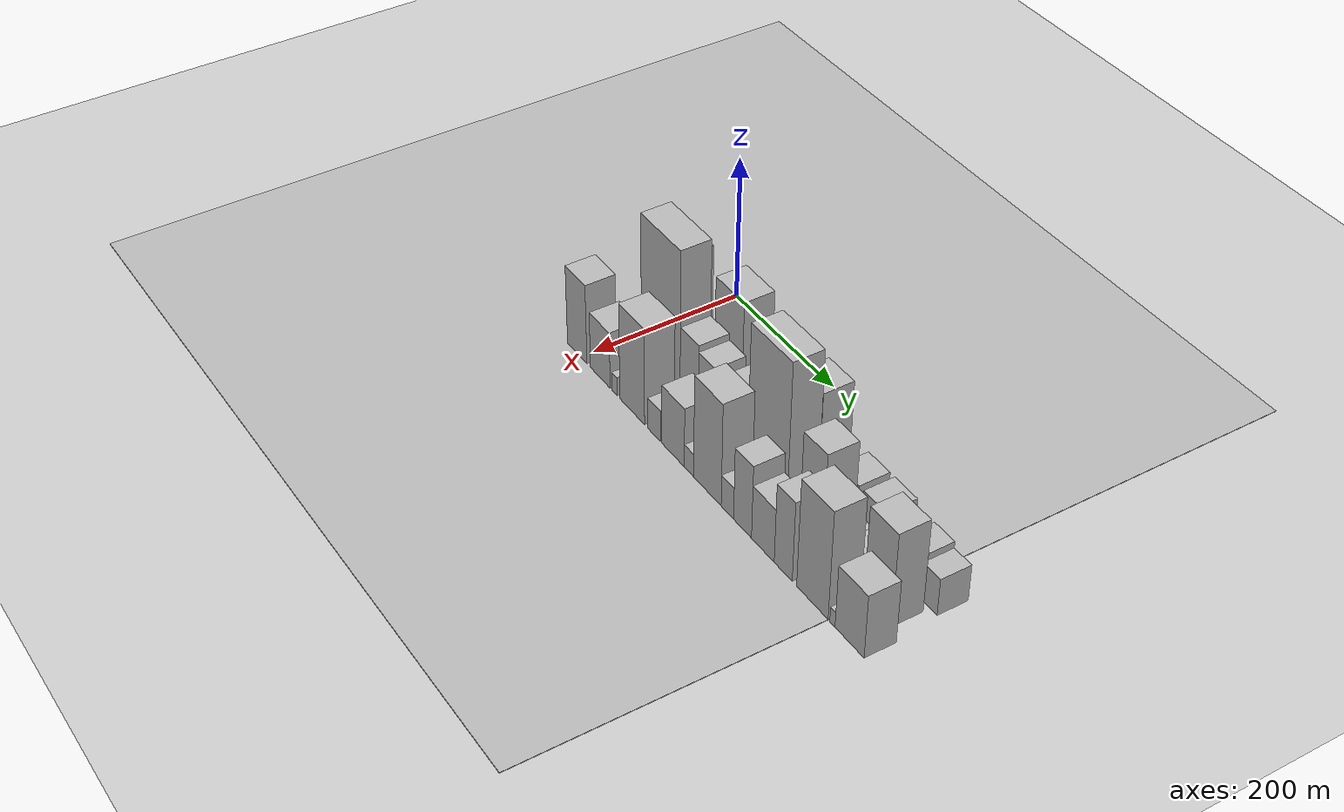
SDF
<sdf version="1.6">
 <world name="default">
  <include><name>ground_plane_1</name><uri>model://HANNAS_ground_plane</uri></include>
  <include>
   <name>ground_plane_2</name>
   <uri>model://HANNAS_ground_plane</uri>
   <pose>100 0 0  0 0 0</pose>
  </include>
  <model name="building_17">
   <static>1</static>
   <pose>100.0000 41.2047 0 0.000000 0.000000 0.000000</pose>
   <link name="link">
    <pose>0 0 75.00 0 0 0</pose>
    <collision name="collision"><geometry><box><size>40.0000 54.4174 150.0000</size></box></geometry></collision>
    <visual name="visual">
     <cast_shadows>0</cast_shadows>
     <geometry><box><size>40.0000 54.4174 150.0000</size></box></geometry>
     <material>
      <script>
       <uri>model://HANNAS_wall/materials/scripts</uri>
       <uri>model://HANNAS_wall/materials/textures</uri>
       <name>vrc/HANNAS_wall</name>
      </script>
     </material>
    </visual>
   </link>
  </model>
  <model name="building_18">
   <static>1</static>
   <pose>100.0000 85.2992 0 0.000000 0.000000 0.000000</pose>
   <link name="link">
    <pose>0 0 16.50 0 0 0</pose>
    <collision name="collision"><geometry><box><size>40.0000 19.7715 33.0000</size></box></geometry></collision>
    <visual name="visual">
     <cast_shadows>0</cast_shadows>
     <geometry><box><size>40.0000 19.7715 33.0000</size></box></geometry>
     <material>
      <script>
       <uri>model://HANNAS_wall/materials/scripts</uri>
       <uri>model://HANNAS_wall/materials/textures</uri>
       <name>vrc/HANNAS_wall</name>
      </script>
     </material>
    </visual>
   </link>
  </model>
  <model name="building_19">
   <static>1</static>
   <pose>100.0000 117.4299 0 0.000000 0.000000 0.000000</pose>
   <link name="link">
    <pose>0 0 22.50 0 0 0</pose>
    <collision name="collision"><geometry><box><size>40.0000 26.4899 45.0000</size></box></geometry></collision>
    <visual name="visual">
     <cast_shadows>0</cast_shadows>
     <geometry><box><size>40.0000 26.4899 45.0000</size></box></geometry>
     <material>
      <script>
       <uri>model://HANNAS_wall/materials/scripts</uri>
       <uri>model://HANNAS_wall/materials/textures</uri>
       <name>vrc/HANNAS_wall</name>
      </script>
     </material>
    </visual>
   </link>
  </model>
  <model name="building_20">
   <static>1</static>
   <pose>100.0000 162.7504 0 0.000000 0.000000 0.000000</pose>
   <link name="link">
    <pose>0 0 82.50 0 0 0</pose>
    <collision name="collision"><geometry><box><size>40.0000 56.1511 165.0000</size></box></geometry></collision>
    <visual name="visual">
     <cast_shadows>0</cast_shadows>
     <geometry><box><size>40.0000 56.1511 165.0000</size></box></geometry>
     <material>
      <script>
       <uri>model://HANNAS_wall/materials/scripts</uri>
       <uri>model://HANNAS_wall/materials/textures</uri>
       <name>vrc/HANNAS_wall</name>
      </script>
     </material>
    </visual>
   </link>
  </model>
  <model name="building_21">
   <static>1</static>
   <pose>100.0000 207.4724 0 0.000000 0.000000 0.000000</pose>
   <link name="link">
    <pose>0 0 31.50 0 0 0</pose>
    <collision name="collision"><geometry><box><size>40.0000 33.2930 63.0000</size></box></geometry></collision>
    <visual name="visual">
     <cast_shadows>0</cast_shadows>
     <geometry><box><size>40.0000 33.2930 63.0000</size></box></geometry>
     <material>
      <script>
       <uri>model://HANNAS_wall/materials/scripts</uri>
       <uri>model://HANNAS_wall/materials/textures</uri>
       <name>vrc/HANNAS_wall</name>
      </script>
     </material>
    </visual>
   </link>
  </model>
  <model name="building_22">
   <static>1</static>
   <pose>100.0000 228.9524 0 0.000000 0.000000 0.000000</pose>
   <link name="link">
    <pose>0 0 12.00 0 0 0</pose>
    <collision name="collision"><geometry><box><size>40.0000 9.6670 24.0000</size></box></geometry></collision>
    <visual name="visual">
     <cast_shadows>0</cast_shadows>
     <geometry><box><size>40.0000 9.6670 24.0000</size></box></geometry>
     <material>
      <script>
       <uri>model://HANNAS_wall/materials/scripts</uri>
       <uri>model://HANNAS_wall/materials/textures</uri>
       <name>vrc/HANNAS_wall</name>
      </script>
     </material>
    </visual>
   </link>
  </model>
  <model name="building_23">
   <static>1</static>
   <pose>100.0000 268.7100 0 0.000000 0.000000 0.000000</pose>
   <link name="link">
    <pose>0 0 43.50 0 0 0</pose>
    <collision name="collision"><geometry><box><size>40.0000 51.8483 87.0000</size></box></geometry></collision>
    <visual name="visual">
     <cast_shadows>0</cast_shadows>
     <geometry><box><size>40.0000 51.8483 87.0000</size></box></geometry>
     <material>
      <script>
       <uri>model://HANNAS_wall/materials/scripts</uri>
       <uri>model://HANNAS_wall/materials/textures</uri>
       <name>vrc/HANNAS_wall</name>
      </script>
     </material>
    </visual>
   </link>
  </model>
  <model name="building_24">
   <static>1</static>
   <pose>100.0000 318.0500 0 0.000000 0.000000 0.000000</pose>
   <link name="link">
    <pose>0 0 72.00 0 0 0</pose>
    <collision name="collision"><geometry><box><size>40.0000 46.8317 144.0000</size></box></geometry></collision>
    <visual name="visual">
     <cast_shadows>0</cast_shadows>
     <geometry><box><size>40.0000 46.8317 144.0000</size></box></geometry>
     <material>
      <script>
       <uri>model://HANNAS_wall/materials/scripts</uri>
       <uri>model://HANNAS_wall/materials/textures</uri>
       <name>vrc/HANNAS_wall</name>
      </script>
     </material>
    </visual>
   </link>
  </model>
  <model name="building_25">
   <static>1</static>
   <pose>100.0000 352.3930 0 0.000000 0.000000 0.000000</pose>
   <link name="link">
    <pose>0 0 21.00 0 0 0</pose>
    <collision name="collision"><geometry><box><size>40.0000 21.8542 42.0000</size></box></geometry></collision>
    <visual name="visual">
     <cast_shadows>0</cast_shadows>
     <geometry><box><size>40.0000 21.8542 42.0000</size></box></geometry>
     <material>
      <script>
       <uri>model://HANNAS_wall/materials/scripts</uri>
       <uri>model://HANNAS_wall/materials/textures</uri>
       <name>vrc/HANNAS_wall</name>
      </script>
     </material>
    </visual>
   </link>
  </model>
  <model name="building_26">
   <static>1</static>
   <pose>100.0000 392.6791 0 0.000000 0.000000 0.000000</pose>
   <link name="link">
    <pose>0 0 34.50 0 0 0</pose>
    <collision name="collision"><geometry><box><size>40.0000 38.7181 69.0000</size></box></geometry></collision>
    <visual name="visual">
     <cast_shadows>0</cast_shadows>
     <geometry><box><size>40.0000 38.7181 69.0000</size></box></geometry>
     <material>
      <script>
       <uri>model://HANNAS_wall/materials/scripts</uri>
       <uri>model://HANNAS_wall/materials/textures</uri>
       <name>vrc/HANNAS_wall</name>
      </script>
     </material>
    </visual>
   </link>
  </model>
  <model name="building_27">
   <static>1</static>
   <pose>100.0000 440.0638 0 0.000000 0.000000 0.000000</pose>
   <link name="link">
    <pose>0 0 34.50 0 0 0</pose>
    <collision name="collision"><geometry><box><size>40.0000 40.0512 69.0000</size></box></geometry></collision>
    <visual name="visual">
     <cast_shadows>0</cast_shadows>
     <geometry><box><size>40.0000 40.0512 69.0000</size></box></geometry>
     <material>
      <script>
       <uri>model://HANNAS_wall/materials/scripts</uri>
       <uri>model://HANNAS_wall/materials/textures</uri>
       <name>vrc/HANNAS_wall</name>
      </script>
     </material>
    </visual>
   </link>
  </model>
  <model name="building_28">
   <static>1</static>
   <pose>100.0000 473.9851 0 0.000000 0.000000 0.000000</pose>
   <link name="link">
    <pose>0 0 21.00 0 0 0</pose>
    <collision name="collision"><geometry><box><size>40.0000 21.7914 42.0000</size></box></geometry></collision>
    <visual name="visual">
     <cast_shadows>0</cast_shadows>
     <geometry><box><size>40.0000 21.7914 42.0000</size></box></geometry>
     <material>
      <script>
       <uri>model://HANNAS_wall/materials/scripts</uri>
       <uri>model://HANNAS_wall/materials/textures</uri>
       <name>vrc/HANNAS_wall</name>
      </script>
     </material>
    </visual>
   </link>
  </model>
  <model name="building_29">
   <static>1</static>
   <pose>100.0000 507.1478 0 0.000000 0.000000 0.000000</pose>
   <link name="link">
    <pose>0 0 30.00 0 0 0</pose>
    <collision name="collision"><geometry><box><size>40.0000 34.5340 60.0000</size></box></geometry></collision>
    <visual name="visual">
     <cast_shadows>0</cast_shadows>
     <geometry><box><size>40.0000 34.5340 60.0000</size></box></geometry>
     <material>
      <script>
       <uri>model://HANNAS_wall/materials/scripts</uri>
       <uri>model://HANNAS_wall/materials/textures</uri>
       <name>vrc/HANNAS_wall</name>
      </script>
     </material>
    </visual>
   </link>
  </model>
  <model name="building_30">
   <static>1</static>
   <pose>100.0000 539.1246 0 0.000000 0.000000 0.000000</pose>
   <link name="link">
    <pose>0 0 25.50 0 0 0</pose>
    <collision name="collision"><geometry><box><size>40.0000 29.4196 51.0000</size></box></geometry></collision>
    <visual name="visual">
     <cast_shadows>0</cast_shadows>
     <geometry><box><size>40.0000 29.4196 51.0000</size></box></geometry>
     <material>
      <script>
       <uri>model://HANNAS_wall/materials/scripts</uri>
       <uri>model://HANNAS_wall/materials/textures</uri>
       <name>vrc/HANNAS_wall</name>
      </script>
     </material>
    </visual>
   </link>
  </model>
  <model name="building_44">
   <static>1</static>
   <pose>149.0000 9.5778 0 0.000000 0.000000 0.000000</pose>
   <link name="link">
    <pose>0 0 25.50 0 0 0</pose>
    <collision name="collision"><geometry><box><size>40.0000 30.1677 51.0000</size></box></geometry></collision>
    <visual name="visual">
     <cast_shadows>0</cast_shadows>
     <geometry><box><size>40.0000 30.1677 51.0000</size></box></geometry>
     <material>
      <script>
       <uri>model://HANNAS_wall/materials/scripts</uri>
       <uri>model://HANNAS_wall/materials/textures</uri>
       <name>vrc/HANNAS_wall</name>
      </script>
     </material>
    </visual>
   </link>
  </model>
  <model name="building_45">
   <static>1</static>
   <pose>149.0000 40.5013 0 0.000000 0.000000 0.000000</pose>
   <link name="link">
    <pose>0 0 31.50 0 0 0</pose>
    <collision name="collision"><geometry><box><size>40.0000 31.6792 63.0000</size></box></geometry></collision>
    <visual name="visual">
     <cast_shadows>0</cast_shadows>
     <geometry><box><size>40.0000 31.6792 63.0000</size></box></geometry>
     <material>
      <script>
       <uri>model://HANNAS_wall/materials/scripts</uri>
       <uri>model://HANNAS_wall/materials/textures</uri>
       <name>vrc/HANNAS_wall</name>
      </script>
     </material>
    </visual>
   </link>
  </model>
  <model name="building_46">
   <static>1</static>
   <pose>149.0000 97.6787 0 0.000000 0.000000 0.000000</pose>
   <link name="link">
    <pose>0 0 111.00 0 0 0</pose>
    <collision name="collision"><geometry><box><size>40.0000 82.6757 222.0000</size></box></geometry></collision>
    <visual name="visual">
     <cast_shadows>0</cast_shadows>
     <geometry><box><size>40.0000 82.6757 222.0000</size></box></geometry>
     <material>
      <script>
       <uri>model://HANNAS_wall/materials/scripts</uri>
       <uri>model://HANNAS_wall/materials/textures</uri>
       <name>vrc/HANNAS_wall</name>
      </script>
     </material>
    </visual>
   </link>
  </model>
  <model name="building_47">
   <static>1</static>
   <pose>149.0000 158.0164 0 0.000000 0.000000 0.000000</pose>
   <link name="link">
    <pose>0 0 58.50 0 0 0</pose>
    <collision name="collision"><geometry><box><size>40.0000 37.9998 117.0000</size></box></geometry></collision>
    <visual name="visual">
     <cast_shadows>0</cast_shadows>
     <geometry><box><size>40.0000 37.9998 117.0000</size></box></geometry>
     <material>
      <script>
       <uri>model://HANNAS_wall/materials/scripts</uri>
       <uri>model://HANNAS_wall/materials/textures</uri>
       <name>vrc/HANNAS_wall</name>
      </script>
     </material>
    </visual>
   </link>
  </model>
  <model name="building_48">
   <static>1</static>
   <pose>149.0000 193.6412 0 0.000000 0.000000 0.000000</pose>
   <link name="link">
    <pose>0 0 54.00 0 0 0</pose>
    <collision name="collision"><geometry><box><size>40.0000 33.2498 108.0000</size></box></geometry></collision>
    <visual name="visual">
     <cast_shadows>0</cast_shadows>
     <geometry><box><size>40.0000 33.2498 108.0000</size></box></geometry>
     <material>
      <script>
       <uri>model://HANNAS_wall/materials/scripts</uri>
       <uri>model://HANNAS_wall/materials/textures</uri>
       <name>vrc/HANNAS_wall</name>
      </script>
     </material>
    </visual>
   </link>
  </model>
  <model name="building_49">
   <static>1</static>
   <pose>149.0000 227.6740 0 0.000000 0.000000 0.000000</pose>
   <link name="link">
    <pose>0 0 22.50 0 0 0</pose>
    <collision name="collision"><geometry><box><size>40.0000 22.8158 45.0000</size></box></geometry></collision>
    <visual name="visual">
     <cast_shadows>0</cast_shadows>
     <geometry><box><size>40.0000 22.8158 45.0000</size></box></geometry>
     <material>
      <script>
       <uri>model://HANNAS_wall/materials/scripts</uri>
       <uri>model://HANNAS_wall/materials/textures</uri>
       <name>vrc/HANNAS_wall</name>
      </script>
     </material>
    </visual>
   </link>
  </model>
  <model name="building_50">
   <static>1</static>
   <pose>149.0000 257.6221 0 0.000000 0.000000 0.000000</pose>
   <link name="link">
    <pose>0 0 61.50 0 0 0</pose>
    <collision name="collision"><geometry><box><size>40.0000 37.0804 123.0000</size></box></geometry></collision>
    <visual name="visual">
     <cast_shadows>0</cast_shadows>
     <geometry><box><size>40.0000 37.0804 123.0000</size></box></geometry>
     <material>
      <script>
       <uri>model://HANNAS_wall/materials/scripts</uri>
       <uri>model://HANNAS_wall/materials/textures</uri>
       <name>vrc/HANNAS_wall</name>
      </script>
     </material>
    </visual>
   </link>
  </model>
  <model name="building_51">
   <static>1</static>
   <pose>149.0000 314.5155 0 0.000000 0.000000 0.000000</pose>
   <link name="link">
    <pose>0 0 108.00 0 0 0</pose>
    <collision name="collision"><geometry><box><size>40.0000 76.7065 216.0000</size></box></geometry></collision>
    <visual name="visual">
     <cast_shadows>0</cast_shadows>
     <geometry><box><size>40.0000 76.7065 216.0000</size></box></geometry>
     <material>
      <script>
       <uri>model://HANNAS_wall/materials/scripts</uri>
       <uri>model://HANNAS_wall/materials/textures</uri>
       <name>vrc/HANNAS_wall</name>
      </script>
     </material>
    </visual>
   </link>
  </model>
  <model name="building_52">
   <static>1</static>
   <pose>149.0000 356.1283 0 0.000000 0.000000 0.000000</pose>
   <link name="link">
    <pose>0 0 7.50 0 0 0</pose>
    <collision name="collision"><geometry><box><size>40.0000 6.5193 15.0000</size></box></geometry></collision>
    <visual name="visual">
     <cast_shadows>0</cast_shadows>
     <geometry><box><size>40.0000 6.5193 15.0000</size></box></geometry>
     <material>
      <script>
       <uri>model://HANNAS_wall/materials/scripts</uri>
       <uri>model://HANNAS_wall/materials/textures</uri>
       <name>vrc/HANNAS_wall</name>
      </script>
     </material>
    </visual>
   </link>
  </model>
  <model name="building_53">
   <static>1</static>
   <pose>149.0000 368.1216 0 0.000000 0.000000 0.000000</pose>
   <link name="link">
    <pose>0 0 16.50 0 0 0</pose>
    <collision name="collision"><geometry><box><size>40.0000 17.4672 33.0000</size></box></geometry></collision>
    <visual name="visual">
     <cast_shadows>0</cast_shadows>
     <geometry><box><size>40.0000 17.4672 33.0000</size></box></geometry>
     <material>
      <script>
       <uri>model://HANNAS_wall/materials/scripts</uri>
       <uri>model://HANNAS_wall/materials/textures</uri>
       <name>vrc/HANNAS_wall</name>
      </script>
     </material>
    </visual>
   </link>
  </model>
  <model name="building_54">
   <static>1</static>
   <pose>149.0000 398.2571 0 0.000000 0.000000 0.000000</pose>
   <link name="link">
    <pose>0 0 70.50 0 0 0</pose>
    <collision name="collision"><geometry><box><size>40.0000 42.8040 141.0000</size></box></geometry></collision>
    <visual name="visual">
     <cast_shadows>0</cast_shadows>
     <geometry><box><size>40.0000 42.8040 141.0000</size></box></geometry>
     <material>
      <script>
       <uri>model://HANNAS_wall/materials/scripts</uri>
       <uri>model://HANNAS_wall/materials/textures</uri>
       <name>vrc/HANNAS_wall</name>
      </script>
     </material>
    </visual>
   </link>
  </model>
  <model name="building_55">
   <static>1</static>
   <pose>149.0000 428.4738 0 0.000000 0.000000 0.000000</pose>
   <link name="link">
    <pose>0 0 15.00 0 0 0</pose>
    <collision name="collision"><geometry><box><size>40.0000 17.6294 30.0000</size></box></geometry></collision>
    <visual name="visual">
     <cast_shadows>0</cast_shadows>
     <geometry><box><size>40.0000 17.6294 30.0000</size></box></geometry>
     <material>
      <script>
       <uri>model://HANNAS_wall/materials/scripts</uri>
       <uri>model://HANNAS_wall/materials/textures</uri>
       <name>vrc/HANNAS_wall</name>
      </script>
     </material>
    </visual>
   </link>
  </model>
  <model name="building_56">
   <static>1</static>
   <pose>149.0000 450.0955 0 0.000000 0.000000 0.000000</pose>
   <link name="link">
    <pose>0 0 22.50 0 0 0</pose>
    <collision name="collision"><geometry><box><size>40.0000 25.6139 45.0000</size></box></geometry></collision>
    <visual name="visual">
     <cast_shadows>0</cast_shadows>
     <geometry><box><size>40.0000 25.6139 45.0000</size></box></geometry>
     <material>
      <script>
       <uri>model://HANNAS_wall/materials/scripts</uri>
       <uri>model://HANNAS_wall/materials/textures</uri>
       <name>vrc/HANNAS_wall</name>
      </script>
     </material>
    </visual>
   </link>
  </model>
  <model name="building_57">
   <static>1</static>
   <pose>149.0000 478.4363 0 0.000000 0.000000 0.000000</pose>
   <link name="link">
    <pose>0 0 30.00 0 0 0</pose>
    <collision name="collision"><geometry><box><size>40.0000 31.0676 60.0000</size></box></geometry></collision>
    <visual name="visual">
     <cast_shadows>0</cast_shadows>
     <geometry><box><size>40.0000 31.0676 60.0000</size></box></geometry>
     <material>
      <script>
       <uri>model://HANNAS_wall/materials/scripts</uri>
       <uri>model://HANNAS_wall/materials/textures</uri>
       <name>vrc/HANNAS_wall</name>
      </script>
     </material>
    </visual>
   </link>
  </model>
  <model name="building_58">
   <static>1</static>
   <pose>149.0000 518.0492 0 0.000000 0.000000 0.000000</pose>
   <link name="link">
    <pose>0 0 64.50 0 0 0</pose>
    <collision name="collision"><geometry><box><size>40.0000 48.1581 129.0000</size></box></geometry></collision>
    <visual name="visual">
     <cast_shadows>0</cast_shadows>
     <geometry><box><size>40.0000 48.1581 129.0000</size></box></geometry>
     <material>
      <script>
       <uri>model://HANNAS_wall/materials/scripts</uri>
       <uri>model://HANNAS_wall/materials/textures</uri>
       <name>vrc/HANNAS_wall</name>
      </script>
     </material>
    </visual>
   </link>
  </model>
  <model name="building_74">
   <static>1</static>
   <pose>198.0000 -7.6844 0 0.000000 0.000000 0.000000</pose>
   <link name="link">
    <pose>0 0 57.00 0 0 0</pose>
    <collision name="collision"><geometry><box><size>40.0000 44.8240 114.0000</size></box></geometry></collision>
    <visual name="visual">
     <cast_shadows>0</cast_shadows>
     <geometry><box><size>40.0000 44.8240 114.0000</size></box></geometry>
     <material>
      <script>
       <uri>model://HANNAS_wall/materials/scripts</uri>
       <uri>model://HANNAS_wall/materials/textures</uri>
       <name>vrc/HANNAS_wall</name>
      </script>
     </material>
    </visual>
   </link>
  </model>
  <model name="building_75">
   <static>1</static>
   <pose>198.0000 44.9095 0 0.000000 0.000000 0.000000</pose>
   <link name="link">
    <pose>0 0 40.50 0 0 0</pose>
    <collision name="collision"><geometry><box><size>40.0000 44.3637 81.0000</size></box></geometry></collision>
    <visual name="visual">
     <cast_shadows>0</cast_shadows>
     <geometry><box><size>40.0000 44.3637 81.0000</size></box></geometry>
     <material>
      <script>
       <uri>model://HANNAS_wall/materials/scripts</uri>
       <uri>model://HANNAS_wall/materials/textures</uri>
       <name>vrc/HANNAS_wall</name>
      </script>
     </material>
    </visual>
   </link>
  </model>
  <model name="building_76">
   <static>1</static>
   <pose>198.0000 76.8827 0 0.000000 0.000000 0.000000</pose>
   <link name="link">
    <pose>0 0 13.50 0 0 0</pose>
    <collision name="collision"><geometry><box><size>40.0000 11.5827 27.0000</size></box></geometry></collision>
    <visual name="visual">
     <cast_shadows>0</cast_shadows>
     <geometry><box><size>40.0000 11.5827 27.0000</size></box></geometry>
     <material>
      <script>
       <uri>model://HANNAS_wall/materials/scripts</uri>
       <uri>model://HANNAS_wall/materials/textures</uri>
       <name>vrc/HANNAS_wall</name>
      </script>
     </material>
    </visual>
   </link>
  </model>
  <model name="building_77">
   <static>1</static>
   <pose>198.0000 115.4522 0 0.000000 0.000000 0.000000</pose>
   <link name="link">
    <pose>0 0 69.00 0 0 0</pose>
    <collision name="collision"><geometry><box><size>40.0000 53.5563 138.0000</size></box></geometry></collision>
    <visual name="visual">
     <cast_shadows>0</cast_shadows>
     <geometry><box><size>40.0000 53.5563 138.0000</size></box></geometry>
     <material>
      <script>
       <uri>model://HANNAS_wall/materials/scripts</uri>
       <uri>model://HANNAS_wall/materials/textures</uri>
       <name>vrc/HANNAS_wall</name>
      </script>
     </material>
    </visual>
   </link>
  </model>
  <model name="building_78">
   <static>1</static>
   <pose>198.0000 162.5268 0 0.000000 0.000000 0.000000</pose>
   <link name="link">
    <pose>0 0 22.50 0 0 0</pose>
    <collision name="collision"><geometry><box><size>40.0000 26.5929 45.0000</size></box></geometry></collision>
    <visual name="visual">
     <cast_shadows>0</cast_shadows>
     <geometry><box><size>40.0000 26.5929 45.0000</size></box></geometry>
     <material>
      <script>
       <uri>model://HANNAS_wall/materials/scripts</uri>
       <uri>model://HANNAS_wall/materials/textures</uri>
       <name>vrc/HANNAS_wall</name>
      </script>
     </material>
    </visual>
   </link>
  </model>
  <model name="building_79">
   <static>1</static>
   <pose>198.0000 202.2335 0 0.000000 0.000000 0.000000</pose>
   <link name="link">
    <pose>0 0 42.00 0 0 0</pose>
    <collision name="collision"><geometry><box><size>40.0000 46.8204 84.0000</size></box></geometry></collision>
    <visual name="visual">
     <cast_shadows>0</cast_shadows>
     <geometry><box><size>40.0000 46.8204 84.0000</size></box></geometry>
     <material>
      <script>
       <uri>model://HANNAS_wall/materials/scripts</uri>
       <uri>model://HANNAS_wall/materials/textures</uri>
       <name>vrc/HANNAS_wall</name>
      </script>
     </material>
    </visual>
   </link>
  </model>
  <model name="building_80">
   <static>1</static>
   <pose>198.0000 235.1044 0 0.000000 0.000000 0.000000</pose>
   <link name="link">
    <pose>0 0 16.50 0 0 0</pose>
    <collision name="collision"><geometry><box><size>40.0000 18.9214 33.0000</size></box></geometry></collision>
    <visual name="visual">
     <cast_shadows>0</cast_shadows>
     <geometry><box><size>40.0000 18.9214 33.0000</size></box></geometry>
     <material>
      <script>
       <uri>model://HANNAS_wall/materials/scripts</uri>
       <uri>model://HANNAS_wall/materials/textures</uri>
       <name>vrc/HANNAS_wall</name>
      </script>
     </material>
    </visual>
   </link>
  </model>
  <model name="building_81">
   <static>1</static>
   <pose>198.0000 272.1591 0 0.000000 0.000000 0.000000</pose>
   <link name="link">
    <pose>0 0 72.00 0 0 0</pose>
    <collision name="collision"><geometry><box><size>40.0000 55.1880 144.0000</size></box></geometry></collision>
    <visual name="visual">
     <cast_shadows>0</cast_shadows>
     <geometry><box><size>40.0000 55.1880 144.0000</size></box></geometry>
     <material>
      <script>
       <uri>model://HANNAS_wall/materials/scripts</uri>
       <uri>model://HANNAS_wall/materials/textures</uri>
       <name>vrc/HANNAS_wall</name>
      </script>
     </material>
    </visual>
   </link>
  </model>
  <model name="building_82">
   <static>1</static>
   <pose>198.0000 311.9285 0 0.000000 0.000000 0.000000</pose>
   <link name="link">
    <pose>0 0 22.50 0 0 0</pose>
    <collision name="collision"><geometry><box><size>40.0000 24.3509 45.0000</size></box></geometry></collision>
    <visual name="visual">
     <cast_shadows>0</cast_shadows>
     <geometry><box><size>40.0000 24.3509 45.0000</size></box></geometry>
     <material>
      <script>
       <uri>model://HANNAS_wall/materials/scripts</uri>
       <uri>model://HANNAS_wall/materials/textures</uri>
       <name>vrc/HANNAS_wall</name>
      </script>
     </material>
    </visual>
   </link>
  </model>
  <model name="building_83">
   <static>1</static>
   <pose>198.0000 341.4050 0 0.000000 0.000000 0.000000</pose>
   <link name="link">
    <pose>0 0 51.00 0 0 0</pose>
    <collision name="collision"><geometry><box><size>40.0000 34.6020 102.0000</size></box></geometry></collision>
    <visual name="visual">
     <cast_shadows>0</cast_shadows>
     <geometry><box><size>40.0000 34.6020 102.0000</size></box></geometry>
     <material>
      <script>
       <uri>model://HANNAS_wall/materials/scripts</uri>
       <uri>model://HANNAS_wall/materials/textures</uri>
       <name>vrc/HANNAS_wall</name>
      </script>
     </material>
    </visual>
   </link>
  </model>
  <model name="building_84">
   <static>1</static>
   <pose>198.0000 380.1777 0 0.000000 0.000000 0.000000</pose>
   <link name="link">
    <pose>0 0 37.50 0 0 0</pose>
    <collision name="collision"><geometry><box><size>40.0000 42.9436 75.0000</size></box></geometry></collision>
    <visual name="visual">
     <cast_shadows>0</cast_shadows>
     <geometry><box><size>40.0000 42.9436 75.0000</size></box></geometry>
     <material>
      <script>
       <uri>model://HANNAS_wall/materials/scripts</uri>
       <uri>model://HANNAS_wall/materials/textures</uri>
       <name>vrc/HANNAS_wall</name>
      </script>
     </material>
    </visual>
   </link>
  </model>
  <model name="building_85">
   <static>1</static>
   <pose>198.0000 418.3716 0 0.000000 0.000000 0.000000</pose>
   <link name="link">
    <pose>0 0 55.50 0 0 0</pose>
    <collision name="collision"><geometry><box><size>40.0000 33.4441 111.0000</size></box></geometry></collision>
    <visual name="visual">
     <cast_shadows>0</cast_shadows>
     <geometry><box><size>40.0000 33.4441 111.0000</size></box></geometry>
     <material>
      <script>
       <uri>model://HANNAS_wall/materials/scripts</uri>
       <uri>model://HANNAS_wall/materials/textures</uri>
       <name>vrc/HANNAS_wall</name>
      </script>
     </material>
    </visual>
   </link>
  </model>
  <model name="building_86">
   <static>1</static>
   <pose>198.0000 471.4358 0 0.000000 0.000000 0.000000</pose>
   <link name="link">
    <pose>0 0 75.00 0 0 0</pose>
    <collision name="collision"><geometry><box><size>40.0000 56.6844 150.0000</size></box></geometry></collision>
    <visual name="visual">
     <cast_shadows>0</cast_shadows>
     <geometry><box><size>40.0000 56.6844 150.0000</size></box></geometry>
     <material>
      <script>
       <uri>model://HANNAS_wall/materials/scripts</uri>
       <uri>model://HANNAS_wall/materials/textures</uri>
       <name>vrc/HANNAS_wall</name>
      </script>
     </material>
    </visual>
   </link>
  </model>
  <model name="building_87">
   <static>1</static>
   <pose>198.0000 507.3842 0 0.000000 0.000000 0.000000</pose>
   <link name="link">
    <pose>0 0 10.50 0 0 0</pose>
    <collision name="collision"><geometry><box><size>40.0000 9.2124 21.0000</size></box></geometry></collision>
    <visual name="visual">
     <cast_shadows>0</cast_shadows>
     <geometry><box><size>40.0000 9.2124 21.0000</size></box></geometry>
     <material>
      <script>
       <uri>model://HANNAS_wall/materials/scripts</uri>
       <uri>model://HANNAS_wall/materials/textures</uri>
       <name>vrc/HANNAS_wall</name>
      </script>
     </material>
    </visual>
   </link>
  </model>
  <model name="building_88">
   <static>1</static>
   <pose>198.0000 537.2568 0 0.000000 0.000000 0.000000</pose>
   <link name="link">
    <pose>0 0 43.50 0 0 0</pose>
    <collision name="collision"><geometry><box><size>40.0000 50.5328 87.0000</size></box></geometry></collision>
    <visual name="visual">
     <cast_shadows>0</cast_shadows>
     <geometry><box><size>40.0000 50.5328 87.0000</size></box></geometry>
     <material>
      <script>
       <uri>model://HANNAS_wall/materials/scripts</uri>
       <uri>model://HANNAS_wall/materials/textures</uri>
       <name>vrc/HANNAS_wall</name>
      </script>
     </material>
    </visual>
   </link>
  </model>
 </world>
</sdf>
